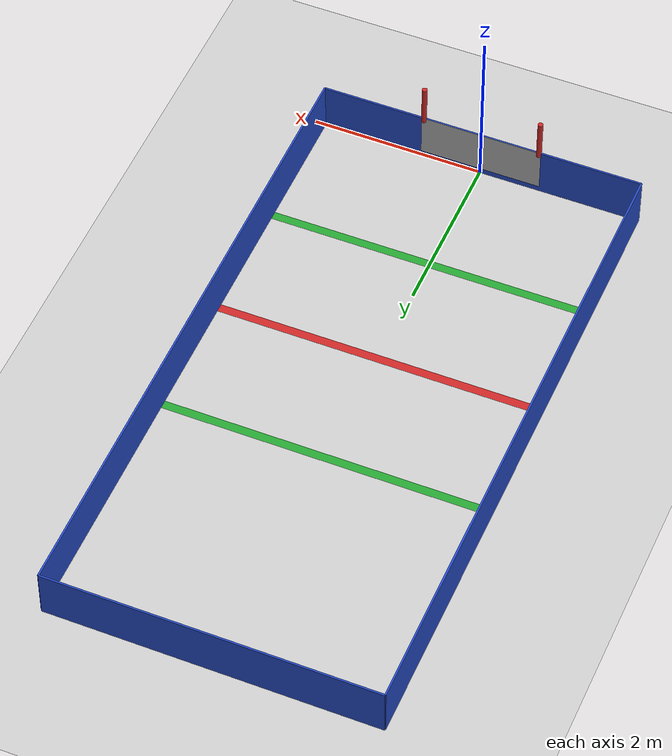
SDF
<?xml version="1.0" ?>
<sdf version="1.4">
  <world name="default">
    <include>
      <uri>model://ground_plane</uri>
    </include>
    <!-- Global light source -->
    <include>
      <uri>model://sun</uri>
    </include>
    <model name="RMCField">
      <link name="Wall_5">
        <collision name="Wall_5_Collision">
          <geometry>
            <box>
              <size>7.38 0.02 0.6</size>
            </box>
          </geometry>
          <pose>0 0 0.3 0 -0 0</pose>
        </collision>
        <visual name="Wall_5_Visual">
          <pose>0 0 0.3 0 -0 0</pose>
          <geometry>
            <box>
              <size>7.38 0.02 0.6</size>
            </box>
          </geometry>
          <material>
            <script>
              <uri>file://media/materials/scripts/gazebo.material</uri>
              <name>Gazebo/Blue</name>
            </script>
          </material>
        </visual>
        <pose>-1.89 3.69 0 0 0 1.57079632679</pose>
      </link>
      <link name="Wall_6">
        <collision name="Wall_6_Collision">
          <geometry>
            <box>
              <size>3.78 0.02 0.6</size>
            </box>
          </geometry>
          <pose>0 0 0.3 0 -0 0</pose>
        </collision>
        <visual name="Wall_6_Visual">
          <pose>0 0 0.3 0 -0 0</pose>
          <geometry>
            <box>
              <size>3.78 0.02 0.6</size>
            </box>
          </geometry>
          <material>
            <script>
              <uri>file://media/materials/scripts/gazebo.material</uri>
              <name>Gazebo/Blue</name>
            </script>
          </material>
        </visual>
        <pose>0 0 0 0 0 0</pose>
      </link>
      <link name="Wall_7">
        <collision name="Wall_7_Collision">
          <geometry>
            <box>
              <size>7.38 0.02 0.6</size>
            </box>
          </geometry>
          <pose>0 0 0.3 0 -0 0</pose>
        </collision>
        <visual name="Wall_7_Visual">
          <pose>0 0 0.3 0 -0 0</pose>
          <geometry>
            <box>
              <size>7.38 0.02 0.6</size>
            </box>
          </geometry>
          <material>
            <script>
              <uri>file://media/materials/scripts/gazebo.material</uri>
              <name>Gazebo/Blue</name>
            </script>
          </material>
        </visual>
        <pose>1.89 3.69 0 0 0 1.57079632679</pose>
      </link>
      <link name="Wall_8">
        <collision name="Wall_8_Collision">
          <geometry>
            <box>
              <size>3.78001 0.02 0.6</size>
            </box>
          </geometry>
          <pose>0 0 0.3 0 -0 0</pose>
        </collision>
        <visual name="Wall_8_Visual">
          <pose>0 0 0.3 0 -0 0</pose>
          <geometry>
            <box>
              <size>3.78001 0.02 0.6</size>
            </box>
          </geometry>
          <material>
            <script>
              <uri>file://media/materials/scripts/gazebo.material</uri>
              <name>Gazebo/Blue</name>
            </script>
          </material>
        </visual>
        <pose>0 7.38 0 0 0 0</pose>
      </link>
      <link name="starting_obstacle_line">
        <collision name="starting_obstacle_line_Collision">
          <geometry>
            <box>
              <size>0 0 0</size>
            </box>
          </geometry>
          <pose>0 0 0 0 -0 0</pose>
        </collision>
        <visual name="starting_obstacle_line_Visual">
          <pose>0 0 0 0 -0 0</pose>
          <geometry>
            <box>
              <size>3.78001 0.1 0</size>
            </box>
          </geometry>
          <material>
            <script>
              <uri>file://media/materials/scripts/gazebo.material</uri>
              <name>Gazebo/Green</name>
            </script>
          </material>
        </visual>
        <pose>0 1.5 0 0 0 0</pose>
      </link>
      <link name="obstacle_midpoint_line">
        <collision name="obstacle_midpoint_line_Collision">
          <geometry>
            <box>
              <size>0 0 0</size>
            </box>
          </geometry>
          <pose>0 0 0 0 -0 0</pose>
        </collision>
        <visual name="obstacle_midpoint_line_Visual">
          <pose>0 0 0 0 -0 0</pose>
          <geometry>
            <box>
              <size>3.78001 0.1 0</size>
            </box>
          </geometry>
          <material>
            <script>
              <uri>file://media/materials/scripts/gazebo.material</uri>
              <name>Gazebo/Red</name>
            </script>
          </material>
        </visual>
        <pose>0 2.97 0 0 0 0</pose>
      </link>
      <link name="obstacle_mining_line">
        <collision name="obstacle_mining_line_Collision">
          <geometry>
            <box>
              <size>0 0 0</size>
            </box>
          </geometry>
          <pose>0 0 0 0 -0 0</pose>
        </collision>
        <visual name="obstacle_mining_line_Visual">
          <pose>0 0 0 0 -0 0</pose>
          <geometry>
            <box>
              <size>3.78001 0.1 0</size>
            </box>
          </geometry>
          <material>
            <script>
              <uri>file://media/materials/scripts/gazebo.material</uri>
              <name>Gazebo/Green</name>
            </script>
          </material>
        </visual>
        <pose>0 4.44 0 0 0 0</pose>
      </link>
      <static>1</static>
      <pose>0 0 0 0 0 0</pose>
    </model>
    <model name="leftBeaconPost">
      <pose>0.686 0 0.8 0 -0 0</pose>
      <link name="link">
        <collision name="collision">
          <geometry>
            <cylinder>
              <radius>0.03</radius>
              kinect
              <length>0.5</length>
            </cylinder>
          </geometry>
        </collision>
        <visual name="visual">
          <geometry>
            <cylinder>
              <radius>0.03</radius>
              <length>0.5</length>
            </cylinder>
          </geometry>
          <material>
            <script>
              <uri>file://media/materials/scripts/gazebo.material</uri>
              <name>Gazebo/Red</name>
            </script>
          </material>
        </visual>
      </link>
      <static>1</static>
    </model>
    <model name="rightBeaconPost">
      <pose>-0.686 0 0.8 0 -0 0</pose>
      <link name="link">
        <collision name="collision">
          <geometry>
            <cylinder>
              <radius>0.03</radius>
              <length>0.5</length>
            </cylinder>
          </geometry>
        </collision>
        <visual name="visual">
          <geometry>
            <cylinder>
              <radius>0.03</radius>
              <length>0.5</length>
            </cylinder>
          </geometry>
          <material>
            <script>
              <uri>file://media/materials/scripts/gazebo.material</uri>
              <name>Gazebo/Red</name>
            </script>
          </material>
        </visual>
      </link>
      <static>1</static>
    </model>

    <include>
      <uri>model://ARUCO_board</uri>
      <pose>0 0.01 0.335 1.5708 1.5708 0</pose>
    </include>

    <!-- Focus camera on the field-->
    <gui>
      <camera name="user_camera">
        <pose>0 -2.7 4.5 0 0.67 1.57079632679</pose>
        <view_controller>orbit</view_controller>
      </camera>
    </gui>
  </world>
</sdf>

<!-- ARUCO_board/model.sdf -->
<sdf version="1.4">
  <model name="ARUCO_board">
    <static>true</static>
    <link name="marker">
      <gravity>false</gravity>
      <visual name="visual">
        <geometry>
          <box>
            <size>0.5334 1.4224 0.001</size>
            <!-- SIZE OF THE MARKER + MARGIN -->
          </box>
        </geometry>
        <material>
          <script>
            <uri>model://ARUCO_board/material/scripts</uri>
	          <uri>model://ARUCO_board/material/textures</uri>
            <name>ARUCO_board</name>
          </script>
        </material>
      </visual>
      <collision name="collision">
        <geometry>
          <box>
            <size>0.5334 1.4224 0.001</size>
            <!-- SIZE OF THE MARKER + MARGIN -->
          </box>
        </geometry>
      </collision>
    </link>
  </model>
</sdf>
